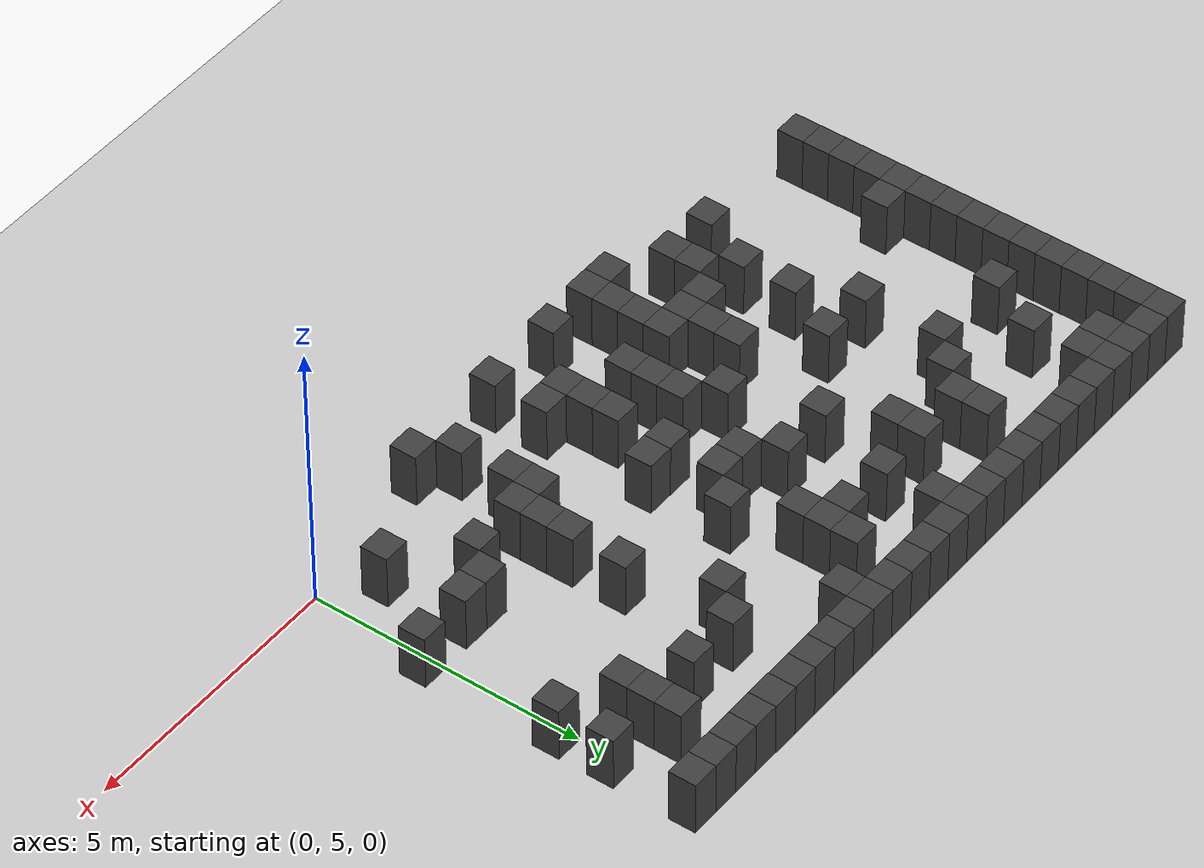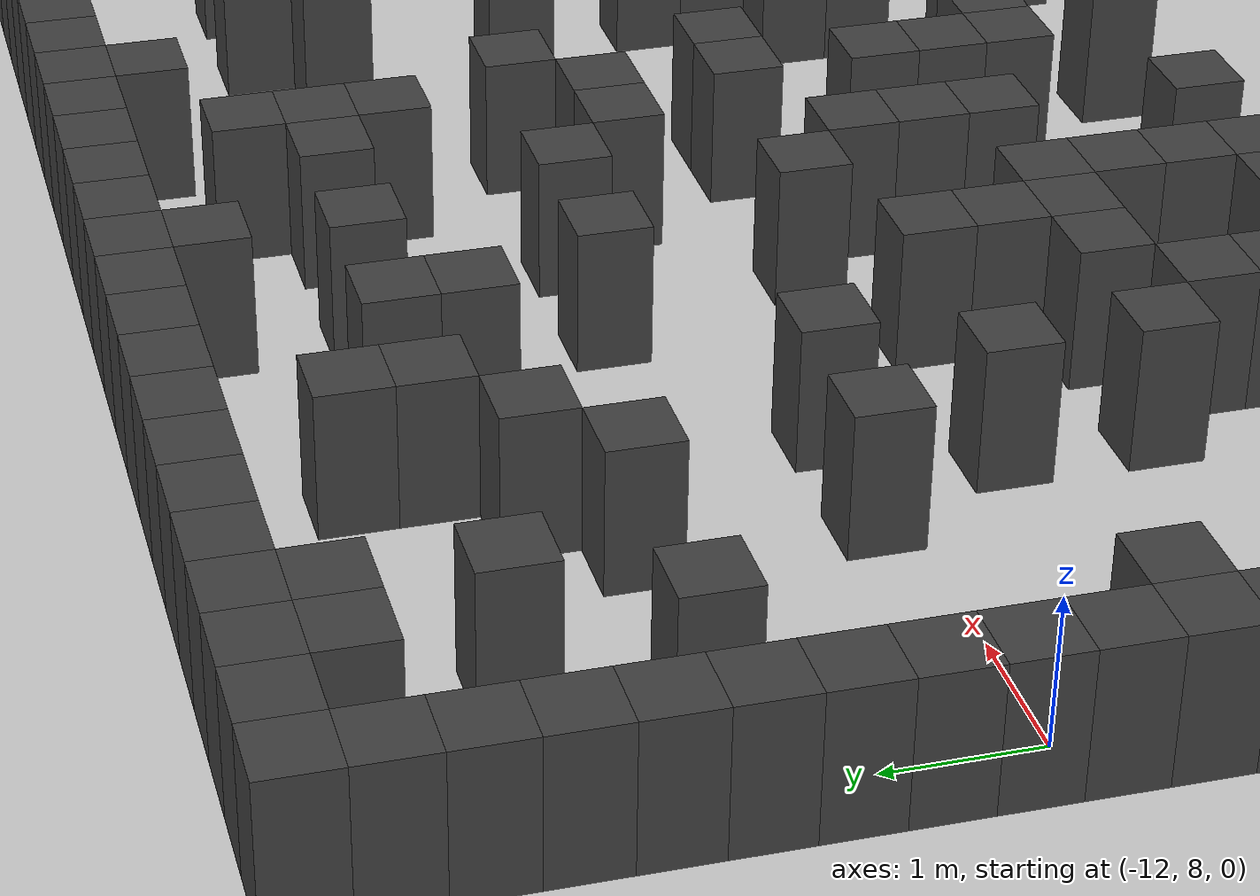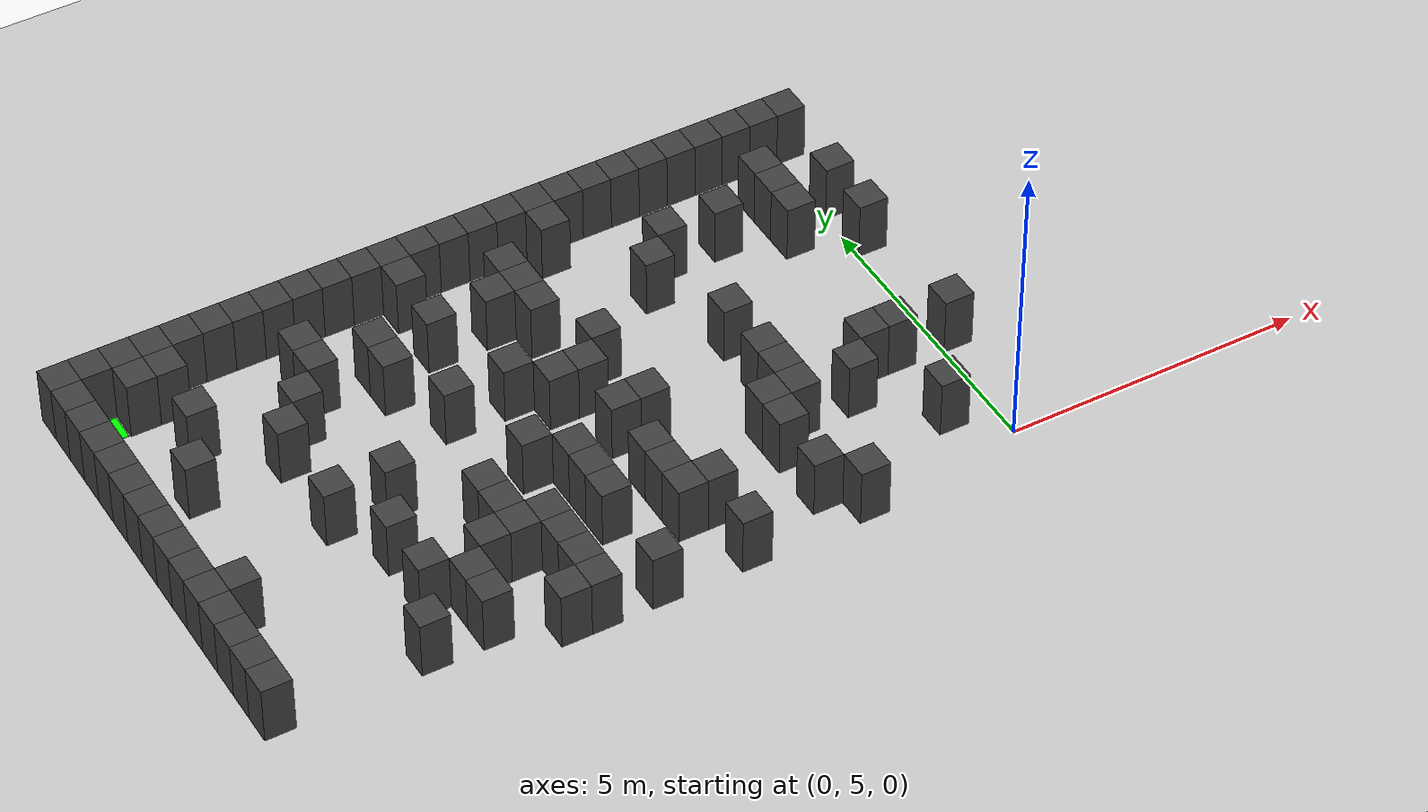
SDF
<sdf version="1.7">
 <world name="map_4302">
  <model name="ground_plane">
   <static>true</static>
   <link name="link">
    <collision name="collision">
     <geometry><plane><normal>0 0 1</normal><size>200 200</size></plane></geometry>
    </collision>
    <visual name="visual">
     <geometry><plane><normal>0 0 1</normal><size>200 200</size></plane></geometry>
     <material><ambient>0.8 0.8 0.8 1</ambient><diffuse>0.8 0.8 0.8 1</diffuse></material>
    </visual>
   </link>
  </model>
  <model name="maze_environment">
   <static>true</static>
   <link name="wall_0">
    <pose>-12.250 12.250 0.500 0 0 0</pose>
    <collision name="col"><geometry><box><size>0.5 0.5 1.0</size></box></geometry></collision>
    <visual name="vis">
     <geometry><box><size>0.5 0.5 1.0</size></box></geometry>
     <material><ambient>0.15 0.15 0.15 1</ambient><diffuse>0.25 0.25 0.25 1</diffuse></material>
    </visual>
   </link>
   <link name="wall_1">
    <pose>-11.750 12.250 0.500 0 0 0</pose>
    <collision name="col"><geometry><box><size>0.5 0.5 1.0</size></box></geometry></collision>
    <visual name="vis">
     <geometry><box><size>0.5 0.5 1.0</size></box></geometry>
     <material><ambient>0.15 0.15 0.15 1</ambient><diffuse>0.25 0.25 0.25 1</diffuse></material>
    </visual>
   </link>
   <link name="wall_2">
    <pose>-11.250 12.250 0.500 0 0 0</pose>
    <collision name="col"><geometry><box><size>0.5 0.5 1.0</size></box></geometry></collision>
    <visual name="vis">
     <geometry><box><size>0.5 0.5 1.0</size></box></geometry>
     <material><ambient>0.15 0.15 0.15 1</ambient><diffuse>0.25 0.25 0.25 1</diffuse></material>
    </visual>
   </link>
   <link name="wall_3">
    <pose>-10.750 12.250 0.500 0 0 0</pose>
    <collision name="col"><geometry><box><size>0.5 0.5 1.0</size></box></geometry></collision>
    <visual name="vis">
     <geometry><box><size>0.5 0.5 1.0</size></box></geometry>
     <material><ambient>0.15 0.15 0.15 1</ambient><diffuse>0.25 0.25 0.25 1</diffuse></material>
    </visual>
   </link>
   <link name="wall_4">
    <pose>-10.250 12.250 0.500 0 0 0</pose>
    <collision name="col"><geometry><box><size>0.5 0.5 1.0</size></box></geometry></collision>
    <visual name="vis">
     <geometry><box><size>0.5 0.5 1.0</size></box></geometry>
     <material><ambient>0.15 0.15 0.15 1</ambient><diffuse>0.25 0.25 0.25 1</diffuse></material>
    </visual>
   </link>
   <link name="wall_5">
    <pose>-9.750 12.250 0.500 0 0 0</pose>
    <collision name="col"><geometry><box><size>0.5 0.5 1.0</size></box></geometry></collision>
    <visual name="vis">
     <geometry><box><size>0.5 0.5 1.0</size></box></geometry>
     <material><ambient>0.15 0.15 0.15 1</ambient><diffuse>0.25 0.25 0.25 1</diffuse></material>
    </visual>
   </link>
   <link name="wall_6">
    <pose>-9.250 12.250 0.500 0 0 0</pose>
    <collision name="col"><geometry><box><size>0.5 0.5 1.0</size></box></geometry></collision>
    <visual name="vis">
     <geometry><box><size>0.5 0.5 1.0</size></box></geometry>
     <material><ambient>0.15 0.15 0.15 1</ambient><diffuse>0.25 0.25 0.25 1</diffuse></material>
    </visual>
   </link>
   <link name="wall_7">
    <pose>-8.750 12.250 0.500 0 0 0</pose>
    <collision name="col"><geometry><box><size>0.5 0.5 1.0</size></box></geometry></collision>
    <visual name="vis">
     <geometry><box><size>0.5 0.5 1.0</size></box></geometry>
     <material><ambient>0.15 0.15 0.15 1</ambient><diffuse>0.25 0.25 0.25 1</diffuse></material>
    </visual>
   </link>
   <link name="wall_8">
    <pose>-8.250 12.250 0.500 0 0 0</pose>
    <collision name="col"><geometry><box><size>0.5 0.5 1.0</size></box></geometry></collision>
    <visual name="vis">
     <geometry><box><size>0.5 0.5 1.0</size></box></geometry>
     <material><ambient>0.15 0.15 0.15 1</ambient><diffuse>0.25 0.25 0.25 1</diffuse></material>
    </visual>
   </link>
   <link name="wall_9">
    <pose>-7.750 12.250 0.500 0 0 0</pose>
    <collision name="col"><geometry><box><size>0.5 0.5 1.0</size></box></geometry></collision>
    <visual name="vis">
     <geometry><box><size>0.5 0.5 1.0</size></box></geometry>
     <material><ambient>0.15 0.15 0.15 1</ambient><diffuse>0.25 0.25 0.25 1</diffuse></material>
    </visual>
   </link>
   <link name="wall_10">
    <pose>-7.250 12.250 0.500 0 0 0</pose>
    <collision name="col"><geometry><box><size>0.5 0.5 1.0</size></box></geometry></collision>
    <visual name="vis">
     <geometry><box><size>0.5 0.5 1.0</size></box></geometry>
     <material><ambient>0.15 0.15 0.15 1</ambient><diffuse>0.25 0.25 0.25 1</diffuse></material>
    </visual>
   </link>
   <link name="wall_11">
    <pose>-6.750 12.250 0.500 0 0 0</pose>
    <collision name="col"><geometry><box><size>0.5 0.5 1.0</size></box></geometry></collision>
    <visual name="vis">
     <geometry><box><size>0.5 0.5 1.0</size></box></geometry>
     <material><ambient>0.15 0.15 0.15 1</ambient><diffuse>0.25 0.25 0.25 1</diffuse></material>
    </visual>
   </link>
   <link name="wall_12">
    <pose>-6.250 12.250 0.500 0 0 0</pose>
    <collision name="col"><geometry><box><size>0.5 0.5 1.0</size></box></geometry></collision>
    <visual name="vis">
     <geometry><box><size>0.5 0.5 1.0</size></box></geometry>
     <material><ambient>0.15 0.15 0.15 1</ambient><diffuse>0.25 0.25 0.25 1</diffuse></material>
    </visual>
   </link>
   <link name="wall_13">
    <pose>-5.750 12.250 0.500 0 0 0</pose>
    <collision name="col"><geometry><box><size>0.5 0.5 1.0</size></box></geometry></collision>
    <visual name="vis">
     <geometry><box><size>0.5 0.5 1.0</size></box></geometry>
     <material><ambient>0.15 0.15 0.15 1</ambient><diffuse>0.25 0.25 0.25 1</diffuse></material>
    </visual>
   </link>
   <link name="wall_14">
    <pose>-5.250 12.250 0.500 0 0 0</pose>
    <collision name="col"><geometry><box><size>0.5 0.5 1.0</size></box></geometry></collision>
    <visual name="vis">
     <geometry><box><size>0.5 0.5 1.0</size></box></geometry>
     <material><ambient>0.15 0.15 0.15 1</ambient><diffuse>0.25 0.25 0.25 1</diffuse></material>
    </visual>
   </link>
   <link name="wall_15">
    <pose>-4.750 12.250 0.500 0 0 0</pose>
    <collision name="col"><geometry><box><size>0.5 0.5 1.0</size></box></geometry></collision>
    <visual name="vis">
     <geometry><box><size>0.5 0.5 1.0</size></box></geometry>
     <material><ambient>0.15 0.15 0.15 1</ambient><diffuse>0.25 0.25 0.25 1</diffuse></material>
    </visual>
   </link>
   <link name="wall_16">
    <pose>-4.250 12.250 0.500 0 0 0</pose>
    <collision name="col"><geometry><box><size>0.5 0.5 1.0</size></box></geometry></collision>
    <visual name="vis">
     <geometry><box><size>0.5 0.5 1.0</size></box></geometry>
     <material><ambient>0.15 0.15 0.15 1</ambient><diffuse>0.25 0.25 0.25 1</diffuse></material>
    </visual>
   </link>
   <link name="wall_17">
    <pose>-3.750 12.250 0.500 0 0 0</pose>
    <collision name="col"><geometry><box><size>0.5 0.5 1.0</size></box></geometry></collision>
    <visual name="vis">
     <geometry><box><size>0.5 0.5 1.0</size></box></geometry>
     <material><ambient>0.15 0.15 0.15 1</ambient><diffuse>0.25 0.25 0.25 1</diffuse></material>
    </visual>
   </link>
   <link name="wall_18">
    <pose>-3.250 12.250 0.500 0 0 0</pose>
    <collision name="col"><geometry><box><size>0.5 0.5 1.0</size></box></geometry></collision>
    <visual name="vis">
     <geometry><box><size>0.5 0.5 1.0</size></box></geometry>
     <material><ambient>0.15 0.15 0.15 1</ambient><diffuse>0.25 0.25 0.25 1</diffuse></material>
    </visual>
   </link>
   <link name="wall_19">
    <pose>-2.750 12.250 0.500 0 0 0</pose>
    <collision name="col"><geometry><box><size>0.5 0.5 1.0</size></box></geometry></collision>
    <visual name="vis">
     <geometry><box><size>0.5 0.5 1.0</size></box></geometry>
     <material><ambient>0.15 0.15 0.15 1</ambient><diffuse>0.25 0.25 0.25 1</diffuse></material>
    </visual>
   </link>
   <link name="wall_20">
    <pose>-2.250 12.250 0.500 0 0 0</pose>
    <collision name="col"><geometry><box><size>0.5 0.5 1.0</size></box></geometry></collision>
    <visual name="vis">
     <geometry><box><size>0.5 0.5 1.0</size></box></geometry>
     <material><ambient>0.15 0.15 0.15 1</ambient><diffuse>0.25 0.25 0.25 1</diffuse></material>
    </visual>
   </link>
   <link name="wall_21">
    <pose>-1.750 12.250 0.500 0 0 0</pose>
    <collision name="col"><geometry><box><size>0.5 0.5 1.0</size></box></geometry></collision>
    <visual name="vis">
     <geometry><box><size>0.5 0.5 1.0</size></box></geometry>
     <material><ambient>0.15 0.15 0.15 1</ambient><diffuse>0.25 0.25 0.25 1</diffuse></material>
    </visual>
   </link>
   <link name="wall_22">
    <pose>-1.250 12.250 0.500 0 0 0</pose>
    <collision name="col"><geometry><box><size>0.5 0.5 1.0</size></box></geometry></collision>
    <visual name="vis">
     <geometry><box><size>0.5 0.5 1.0</size></box></geometry>
     <material><ambient>0.15 0.15 0.15 1</ambient><diffuse>0.25 0.25 0.25 1</diffuse></material>
    </visual>
   </link>
   <link name="wall_23">
    <pose>-0.750 12.250 0.500 0 0 0</pose>
    <collision name="col"><geometry><box><size>0.5 0.5 1.0</size></box></geometry></collision>
    <visual name="vis">
     <geometry><box><size>0.5 0.5 1.0</size></box></geometry>
     <material><ambient>0.15 0.15 0.15 1</ambient><diffuse>0.25 0.25 0.25 1</diffuse></material>
    </visual>
   </link>
   <link name="wall_24">
    <pose>-0.250 12.250 0.500 0 0 0</pose>
    <collision name="col"><geometry><box><size>0.5 0.5 1.0</size></box></geometry></collision>
    <visual name="vis">
     <geometry><box><size>0.5 0.5 1.0</size></box></geometry>
     <material><ambient>0.15 0.15 0.15 1</ambient><diffuse>0.25 0.25 0.25 1</diffuse></material>
    </visual>
   </link>
   <link name="wall_25">
    <pose>0.250 12.250 0.500 0 0 0</pose>
    <collision name="col"><geometry><box><size>0.5 0.5 1.0</size></box></geometry></collision>
    <visual name="vis">
     <geometry><box><size>0.5 0.5 1.0</size></box></geometry>
     <material><ambient>0.15 0.15 0.15 1</ambient><diffuse>0.25 0.25 0.25 1</diffuse></material>
    </visual>
   </link>
   <link name="wall_50">
    <pose>-12.250 11.750 0.500 0 0 0</pose>
    <collision name="col"><geometry><box><size>0.5 0.5 1.0</size></box></geometry></collision>
    <visual name="vis">
     <geometry><box><size>0.5 0.5 1.0</size></box></geometry>
     <material><ambient>0.15 0.15 0.15 1</ambient><diffuse>0.25 0.25 0.25 1</diffuse></material>
    </visual>
   </link>
   <link name="wall_51">
    <pose>-11.250 11.750 0.500 0 0 0</pose>
    <collision name="col"><geometry><box><size>0.5 0.5 1.0</size></box></geometry></collision>
    <visual name="vis">
     <geometry><box><size>0.5 0.5 1.0</size></box></geometry>
     <material><ambient>0.15 0.15 0.15 1</ambient><diffuse>0.25 0.25 0.25 1</diffuse></material>
    </visual>
   </link>
   <link name="wall_52">
    <pose>-10.750 11.750 0.500 0 0 0</pose>
    <collision name="col"><geometry><box><size>0.5 0.5 1.0</size></box></geometry></collision>
    <visual name="vis">
     <geometry><box><size>0.5 0.5 1.0</size></box></geometry>
     <material><ambient>0.15 0.15 0.15 1</ambient><diffuse>0.25 0.25 0.25 1</diffuse></material>
    </visual>
   </link>
   <link name="wall_53">
    <pose>-6.750 11.750 0.500 0 0 0</pose>
    <collision name="col"><geometry><box><size>0.5 0.5 1.0</size></box></geometry></collision>
    <visual name="vis">
     <geometry><box><size>0.5 0.5 1.0</size></box></geometry>
     <material><ambient>0.15 0.15 0.15 1</ambient><diffuse>0.25 0.25 0.25 1</diffuse></material>
    </visual>
   </link>
   <link name="wall_54">
    <pose>-4.250 11.750 0.500 0 0 0</pose>
    <collision name="col"><geometry><box><size>0.5 0.5 1.0</size></box></geometry></collision>
    <visual name="vis">
     <geometry><box><size>0.5 0.5 1.0</size></box></geometry>
     <material><ambient>0.15 0.15 0.15 1</ambient><diffuse>0.25 0.25 0.25 1</diffuse></material>
    </visual>
   </link>
   <link name="wall_62">
    <pose>-12.250 11.250 0.500 0 0 0</pose>
    <collision name="col"><geometry><box><size>0.5 0.5 1.0</size></box></geometry></collision>
    <visual name="vis">
     <geometry><box><size>0.5 0.5 1.0</size></box></geometry>
     <material><ambient>0.15 0.15 0.15 1</ambient><diffuse>0.25 0.25 0.25 1</diffuse></material>
    </visual>
   </link>
   <link name="wall_63">
    <pose>-8.750 11.250 0.500 0 0 0</pose>
    <collision name="col"><geometry><box><size>0.5 0.5 1.0</size></box></geometry></collision>
    <visual name="vis">
     <geometry><box><size>0.5 0.5 1.0</size></box></geometry>
     <material><ambient>0.15 0.15 0.15 1</ambient><diffuse>0.25 0.25 0.25 1</diffuse></material>
    </visual>
   </link>
   <link name="wall_64">
    <pose>-5.250 11.250 0.500 0 0 0</pose>
    <collision name="col"><geometry><box><size>0.5 0.5 1.0</size></box></geometry></collision>
    <visual name="vis">
     <geometry><box><size>0.5 0.5 1.0</size></box></geometry>
     <material><ambient>0.15 0.15 0.15 1</ambient><diffuse>0.25 0.25 0.25 1</diffuse></material>
    </visual>
   </link>
   <link name="wall_65">
    <pose>-0.750 11.250 0.500 0 0 0</pose>
    <collision name="col"><geometry><box><size>0.5 0.5 1.0</size></box></geometry></collision>
    <visual name="vis">
     <geometry><box><size>0.5 0.5 1.0</size></box></geometry>
     <material><ambient>0.15 0.15 0.15 1</ambient><diffuse>0.25 0.25 0.25 1</diffuse></material>
    </visual>
   </link>
   <link name="wall_69">
    <pose>-12.250 10.750 0.500 0 0 0</pose>
    <collision name="col"><geometry><box><size>0.5 0.5 1.0</size></box></geometry></collision>
    <visual name="vis">
     <geometry><box><size>0.5 0.5 1.0</size></box></geometry>
     <material><ambient>0.15 0.15 0.15 1</ambient><diffuse>0.25 0.25 0.25 1</diffuse></material>
    </visual>
   </link>
   <link name="wall_70">
    <pose>-10.750 10.750 0.500 0 0 0</pose>
    <collision name="col"><geometry><box><size>0.5 0.5 1.0</size></box></geometry></collision>
    <visual name="vis">
     <geometry><box><size>0.5 0.5 1.0</size></box></geometry>
     <material><ambient>0.15 0.15 0.15 1</ambient><diffuse>0.25 0.25 0.25 1</diffuse></material>
    </visual>
   </link>
   <link name="wall_71">
    <pose>-8.750 10.750 0.500 0 0 0</pose>
    <collision name="col"><geometry><box><size>0.5 0.5 1.0</size></box></geometry></collision>
    <visual name="vis">
     <geometry><box><size>0.5 0.5 1.0</size></box></geometry>
     <material><ambient>0.15 0.15 0.15 1</ambient><diffuse>0.25 0.25 0.25 1</diffuse></material>
    </visual>
   </link>
   <link name="wall_72">
    <pose>-7.750 10.750 0.500 0 0 0</pose>
    <collision name="col"><geometry><box><size>0.5 0.5 1.0</size></box></geometry></collision>
    <visual name="vis">
     <geometry><box><size>0.5 0.5 1.0</size></box></geometry>
     <material><ambient>0.15 0.15 0.15 1</ambient><diffuse>0.25 0.25 0.25 1</diffuse></material>
    </visual>
   </link>
   <link name="wall_73">
    <pose>-6.750 10.750 0.500 0 0 0</pose>
    <collision name="col"><geometry><box><size>0.5 0.5 1.0</size></box></geometry></collision>
    <visual name="vis">
     <geometry><box><size>0.5 0.5 1.0</size></box></geometry>
     <material><ambient>0.15 0.15 0.15 1</ambient><diffuse>0.25 0.25 0.25 1</diffuse></material>
    </visual>
   </link>
   <link name="wall_74">
    <pose>-5.750 10.750 0.500 0 0 0</pose>
    <collision name="col"><geometry><box><size>0.5 0.5 1.0</size></box></geometry></collision>
    <visual name="vis">
     <geometry><box><size>0.5 0.5 1.0</size></box></geometry>
     <material><ambient>0.15 0.15 0.15 1</ambient><diffuse>0.25 0.25 0.25 1</diffuse></material>
    </visual>
   </link>
   <link name="wall_75">
    <pose>-5.250 10.750 0.500 0 0 0</pose>
    <collision name="col"><geometry><box><size>0.5 0.5 1.0</size></box></geometry></collision>
    <visual name="vis">
     <geometry><box><size>0.5 0.5 1.0</size></box></geometry>
     <material><ambient>0.15 0.15 0.15 1</ambient><diffuse>0.25 0.25 0.25 1</diffuse></material>
    </visual>
   </link>
   <link name="wall_76">
    <pose>-2.750 10.750 0.500 0 0 0</pose>
    <collision name="col"><geometry><box><size>0.5 0.5 1.0</size></box></geometry></collision>
    <visual name="vis">
     <geometry><box><size>0.5 0.5 1.0</size></box></geometry>
     <material><ambient>0.15 0.15 0.15 1</ambient><diffuse>0.25 0.25 0.25 1</diffuse></material>
    </visual>
   </link>
   <link name="wall_77">
    <pose>-1.750 10.750 0.500 0 0 0</pose>
    <collision name="col"><geometry><box><size>0.5 0.5 1.0</size></box></geometry></collision>
    <visual name="vis">
     <geometry><box><size>0.5 0.5 1.0</size></box></geometry>
     <material><ambient>0.15 0.15 0.15 1</ambient><diffuse>0.25 0.25 0.25 1</diffuse></material>
    </visual>
   </link>
   <link name="wall_78">
    <pose>-0.750 10.750 0.500 0 0 0</pose>
    <collision name="col"><geometry><box><size>0.5 0.5 1.0</size></box></geometry></collision>
    <visual name="vis">
     <geometry><box><size>0.5 0.5 1.0</size></box></geometry>
     <material><ambient>0.15 0.15 0.15 1</ambient><diffuse>0.25 0.25 0.25 1</diffuse></material>
    </visual>
   </link>
   <link name="wall_79">
    <pose>0.250 10.750 0.500 0 0 0</pose>
    <collision name="col"><geometry><box><size>0.5 0.5 1.0</size></box></geometry></collision>
    <visual name="vis">
     <geometry><box><size>0.5 0.5 1.0</size></box></geometry>
     <material><ambient>0.15 0.15 0.15 1</ambient><diffuse>0.25 0.25 0.25 1</diffuse></material>
    </visual>
   </link>
   <link name="wall_87">
    <pose>-12.250 10.250 0.500 0 0 0</pose>
    <collision name="col"><geometry><box><size>0.5 0.5 1.0</size></box></geometry></collision>
    <visual name="vis">
     <geometry><box><size>0.5 0.5 1.0</size></box></geometry>
     <material><ambient>0.15 0.15 0.15 1</ambient><diffuse>0.25 0.25 0.25 1</diffuse></material>
    </visual>
   </link>
   <link name="wall_88">
    <pose>-9.250 10.250 0.500 0 0 0</pose>
    <collision name="col"><geometry><box><size>0.5 0.5 1.0</size></box></geometry></collision>
    <visual name="vis">
     <geometry><box><size>0.5 0.5 1.0</size></box></geometry>
     <material><ambient>0.15 0.15 0.15 1</ambient><diffuse>0.25 0.25 0.25 1</diffuse></material>
    </visual>
   </link>
   <link name="wall_89">
    <pose>-7.750 10.250 0.500 0 0 0</pose>
    <collision name="col"><geometry><box><size>0.5 0.5 1.0</size></box></geometry></collision>
    <visual name="vis">
     <geometry><box><size>0.5 0.5 1.0</size></box></geometry>
     <material><ambient>0.15 0.15 0.15 1</ambient><diffuse>0.25 0.25 0.25 1</diffuse></material>
    </visual>
   </link>
   <link name="wall_90">
    <pose>-5.250 10.250 0.500 0 0 0</pose>
    <collision name="col"><geometry><box><size>0.5 0.5 1.0</size></box></geometry></collision>
    <visual name="vis">
     <geometry><box><size>0.5 0.5 1.0</size></box></geometry>
     <material><ambient>0.15 0.15 0.15 1</ambient><diffuse>0.25 0.25 0.25 1</diffuse></material>
    </visual>
   </link>
   <link name="wall_91">
    <pose>-3.250 10.250 0.500 0 0 0</pose>
    <collision name="col"><geometry><box><size>0.5 0.5 1.0</size></box></geometry></collision>
    <visual name="vis">
     <geometry><box><size>0.5 0.5 1.0</size></box></geometry>
     <material><ambient>0.15 0.15 0.15 1</ambient><diffuse>0.25 0.25 0.25 1</diffuse></material>
    </visual>
   </link>
   <link name="wall_92">
    <pose>-0.750 10.250 0.500 0 0 0</pose>
    <collision name="col"><geometry><box><size>0.5 0.5 1.0</size></box></geometry></collision>
    <visual name="vis">
     <geometry><box><size>0.5 0.5 1.0</size></box></geometry>
     <material><ambient>0.15 0.15 0.15 1</ambient><diffuse>0.25 0.25 0.25 1</diffuse></material>
    </visual>
   </link>
   <link name="wall_99">
    <pose>-12.250 9.750 0.500 0 0 0</pose>
    <collision name="col"><geometry><box><size>0.5 0.5 1.0</size></box></geometry></collision>
    <visual name="vis">
     <geometry><box><size>0.5 0.5 1.0</size></box></geometry>
     <material><ambient>0.15 0.15 0.15 1</ambient><diffuse>0.25 0.25 0.25 1</diffuse></material>
    </visual>
   </link>
   <link name="wall_100">
    <pose>-11.250 9.750 0.500 0 0 0</pose>
    <collision name="col"><geometry><box><size>0.5 0.5 1.0</size></box></geometry></collision>
    <visual name="vis">
     <geometry><box><size>0.5 0.5 1.0</size></box></geometry>
     <material><ambient>0.15 0.15 0.15 1</ambient><diffuse>0.25 0.25 0.25 1</diffuse></material>
    </visual>
   </link>
   <link name="wall_101">
    <pose>-9.750 9.750 0.500 0 0 0</pose>
    <collision name="col"><geometry><box><size>0.5 0.5 1.0</size></box></geometry></collision>
    <visual name="vis">
     <geometry><box><size>0.5 0.5 1.0</size></box></geometry>
     <material><ambient>0.15 0.15 0.15 1</ambient><diffuse>0.25 0.25 0.25 1</diffuse></material>
    </visual>
   </link>
   <link name="wall_102">
    <pose>0.250 9.750 0.500 0 0 0</pose>
    <collision name="col"><geometry><box><size>0.5 0.5 1.0</size></box></geometry></collision>
    <visual name="vis">
     <geometry><box><size>0.5 0.5 1.0</size></box></geometry>
     <material><ambient>0.15 0.15 0.15 1</ambient><diffuse>0.25 0.25 0.25 1</diffuse></material>
    </visual>
   </link>
   <link name="wall_108">
    <pose>-12.250 9.250 0.500 0 0 0</pose>
    <collision name="col"><geometry><box><size>0.5 0.5 1.0</size></box></geometry></collision>
    <visual name="vis">
     <geometry><box><size>0.5 0.5 1.0</size></box></geometry>
     <material><ambient>0.15 0.15 0.15 1</ambient><diffuse>0.25 0.25 0.25 1</diffuse></material>
    </visual>
   </link>
   <link name="wall_109">
    <pose>-7.250 9.250 0.500 0 0 0</pose>
    <collision name="col"><geometry><box><size>0.5 0.5 1.0</size></box></geometry></collision>
    <visual name="vis">
     <geometry><box><size>0.5 0.5 1.0</size></box></geometry>
     <material><ambient>0.15 0.15 0.15 1</ambient><diffuse>0.25 0.25 0.25 1</diffuse></material>
    </visual>
   </link>
   <link name="wall_110">
    <pose>-6.250 9.250 0.500 0 0 0</pose>
    <collision name="col"><geometry><box><size>0.5 0.5 1.0</size></box></geometry></collision>
    <visual name="vis">
     <geometry><box><size>0.5 0.5 1.0</size></box></geometry>
     <material><ambient>0.15 0.15 0.15 1</ambient><diffuse>0.25 0.25 0.25 1</diffuse></material>
    </visual>
   </link>
   <link name="wall_111">
    <pose>-4.750 9.250 0.500 0 0 0</pose>
    <collision name="col"><geometry><box><size>0.5 0.5 1.0</size></box></geometry></collision>
    <visual name="vis">
     <geometry><box><size>0.5 0.5 1.0</size></box></geometry>
     <material><ambient>0.15 0.15 0.15 1</ambient><diffuse>0.25 0.25 0.25 1</diffuse></material>
    </visual>
   </link>
   <link name="wall_119">
    <pose>-12.250 8.750 0.500 0 0 0</pose>
    <collision name="col"><geometry><box><size>0.5 0.5 1.0</size></box></geometry></collision>
    <visual name="vis">
     <geometry><box><size>0.5 0.5 1.0</size></box></geometry>
     <material><ambient>0.15 0.15 0.15 1</ambient><diffuse>0.25 0.25 0.25 1</diffuse></material>
    </visual>
   </link>
   <link name="wall_120">
    <pose>-5.750 8.750 0.500 0 0 0</pose>
    <collision name="col"><geometry><box><size>0.5 0.5 1.0</size></box></geometry></collision>
    <visual name="vis">
     <geometry><box><size>0.5 0.5 1.0</size></box></geometry>
     <material><ambient>0.15 0.15 0.15 1</ambient><diffuse>0.25 0.25 0.25 1</diffuse></material>
    </visual>
   </link>
   <link name="wall_121">
    <pose>-5.250 8.750 0.500 0 0 0</pose>
    <collision name="col"><geometry><box><size>0.5 0.5 1.0</size></box></geometry></collision>
    <visual name="vis">
     <geometry><box><size>0.5 0.5 1.0</size></box></geometry>
     <material><ambient>0.15 0.15 0.15 1</ambient><diffuse>0.25 0.25 0.25 1</diffuse></material>
    </visual>
   </link>
   <link name="wall_122">
    <pose>-2.750 8.750 0.500 0 0 0</pose>
    <collision name="col"><geometry><box><size>0.5 0.5 1.0</size></box></geometry></collision>
    <visual name="vis">
     <geometry><box><size>0.5 0.5 1.0</size></box></geometry>
     <material><ambient>0.15 0.15 0.15 1</ambient><diffuse>0.25 0.25 0.25 1</diffuse></material>
    </visual>
   </link>
   <link name="wall_128">
    <pose>-12.250 8.250 0.500 0 0 0</pose>
    <collision name="col"><geometry><box><size>0.5 0.5 1.0</size></box></geometry></collision>
    <visual name="vis">
     <geometry><box><size>0.5 0.5 1.0</size></box></geometry>
     <material><ambient>0.15 0.15 0.15 1</ambient><diffuse>0.25 0.25 0.25 1</diffuse></material>
    </visual>
   </link>
   <link name="wall_129">
    <pose>-9.750 8.250 0.500 0 0 0</pose>
    <collision name="col"><geometry><box><size>0.5 0.5 1.0</size></box></geometry></collision>
    <visual name="vis">
     <geometry><box><size>0.5 0.5 1.0</size></box></geometry>
     <material><ambient>0.15 0.15 0.15 1</ambient><diffuse>0.25 0.25 0.25 1</diffuse></material>
    </visual>
   </link>
   <link name="wall_130">
    <pose>-8.750 8.250 0.500 0 0 0</pose>
    <collision name="col"><geometry><box><size>0.5 0.5 1.0</size></box></geometry></collision>
    <visual name="vis">
     <geometry><box><size>0.5 0.5 1.0</size></box></geometry>
     <material><ambient>0.15 0.15 0.15 1</ambient><diffuse>0.25 0.25 0.25 1</diffuse></material>
    </visual>
   </link>
   <link name="wall_138">
    <pose>-12.250 7.750 0.500 0 0 0</pose>
    <collision name="col"><geometry><box><size>0.5 0.5 1.0</size></box></geometry></collision>
    <visual name="vis">
     <geometry><box><size>0.5 0.5 1.0</size></box></geometry>
     <material><ambient>0.15 0.15 0.15 1</ambient><diffuse>0.25 0.25 0.25 1</diffuse></material>
    </visual>
   </link>
   <link name="wall_139">
    <pose>-6.750 7.750 0.500 0 0 0</pose>
    <collision name="col"><geometry><box><size>0.5 0.5 1.0</size></box></geometry></collision>
    <visual name="vis">
     <geometry><box><size>0.5 0.5 1.0</size></box></geometry>
     <material><ambient>0.15 0.15 0.15 1</ambient><diffuse>0.25 0.25 0.25 1</diffuse></material>
    </visual>
   </link>
   <link name="wall_140">
    <pose>-5.250 7.750 0.500 0 0 0</pose>
    <collision name="col"><geometry><box><size>0.5 0.5 1.0</size></box></geometry></collision>
    <visual name="vis">
     <geometry><box><size>0.5 0.5 1.0</size></box></geometry>
     <material><ambient>0.15 0.15 0.15 1</ambient><diffuse>0.25 0.25 0.25 1</diffuse></material>
    </visual>
   </link>
   <link name="wall_141">
    <pose>-4.750 7.750 0.500 0 0 0</pose>
    <collision name="col"><geometry><box><size>0.5 0.5 1.0</size></box></geometry></collision>
    <visual name="vis">
     <geometry><box><size>0.5 0.5 1.0</size></box></geometry>
     <material><ambient>0.15 0.15 0.15 1</ambient><diffuse>0.25 0.25 0.25 1</diffuse></material>
    </visual>
   </link>
   <link name="wall_142">
    <pose>-2.750 7.750 0.500 0 0 0</pose>
    <collision name="col"><geometry><box><size>0.5 0.5 1.0</size></box></geometry></collision>
    <visual name="vis">
     <geometry><box><size>0.5 0.5 1.0</size></box></geometry>
     <material><ambient>0.15 0.15 0.15 1</ambient><diffuse>0.25 0.25 0.25 1</diffuse></material>
    </visual>
   </link>
   <link name="wall_147">
    <pose>-12.250 7.250 0.500 0 0 0</pose>
    <collision name="col"><geometry><box><size>0.5 0.5 1.0</size></box></geometry></collision>
    <visual name="vis">
     <geometry><box><size>0.5 0.5 1.0</size></box></geometry>
     <material><ambient>0.15 0.15 0.15 1</ambient><diffuse>0.25 0.25 0.25 1</diffuse></material>
    </visual>
   </link>
   <link name="wall_148">
    <pose>-11.750 7.250 0.500 0 0 0</pose>
    <collision name="col"><geometry><box><size>0.5 0.5 1.0</size></box></geometry></collision>
    <visual name="vis">
     <geometry><box><size>0.5 0.5 1.0</size></box></geometry>
     <material><ambient>0.15 0.15 0.15 1</ambient><diffuse>0.25 0.25 0.25 1</diffuse></material>
    </visual>
   </link>
   <link name="wall_149">
    <pose>-9.250 7.250 0.500 0 0 0</pose>
    <collision name="col"><geometry><box><size>0.5 0.5 1.0</size></box></geometry></collision>
    <visual name="vis">
     <geometry><box><size>0.5 0.5 1.0</size></box></geometry>
     <material><ambient>0.15 0.15 0.15 1</ambient><diffuse>0.25 0.25 0.25 1</diffuse></material>
    </visual>
   </link>
   <link name="wall_150">
    <pose>-7.750 7.250 0.500 0 0 0</pose>
    <collision name="col"><geometry><box><size>0.5 0.5 1.0</size></box></geometry></collision>
    <visual name="vis">
     <geometry><box><size>0.5 0.5 1.0</size></box></geometry>
     <material><ambient>0.15 0.15 0.15 1</ambient><diffuse>0.25 0.25 0.25 1</diffuse></material>
    </visual>
   </link>
   <link name="wall_151">
    <pose>-6.250 7.250 0.500 0 0 0</pose>
    <collision name="col"><geometry><box><size>0.5 0.5 1.0</size></box></geometry></collision>
    <visual name="vis">
     <geometry><box><size>0.5 0.5 1.0</size></box></geometry>
     <material><ambient>0.15 0.15 0.15 1</ambient><diffuse>0.25 0.25 0.25 1</diffuse></material>
    </visual>
   </link>
   <link name="wall_152">
    <pose>-2.750 7.250 0.500 0 0 0</pose>
    <collision name="col"><geometry><box><size>0.5 0.5 1.0</size></box></geometry></collision>
    <visual name="vis">
     <geometry><box><size>0.5 0.5 1.0</size></box></geometry>
     <material><ambient>0.15 0.15 0.15 1</ambient><diffuse>0.25 0.25 0.25 1</diffuse></material>
    </visual>
   </link>
   <link name="wall_153">
    <pose>-1.250 7.250 0.500 0 0 0</pose>
    <collision name="col"><geometry><box><size>0.5 0.5 1.0</size></box></geometry></collision>
    <visual name="vis">
     <geometry><box><size>0.5 0.5 1.0</size></box></geometry>
     <material><ambient>0.15 0.15 0.15 1</ambient><diffuse>0.25 0.25 0.25 1</diffuse></material>
    </visual>
   </link>
   <link name="wall_154">
    <pose>-0.750 7.250 0.500 0 0 0</pose>
    <collision name="col"><geometry><box><size>0.5 0.5 1.0</size></box></geometry></collision>
    <visual name="vis">
     <geometry><box><size>0.5 0.5 1.0</size></box></geometry>
     <material><ambient>0.15 0.15 0.15 1</ambient><diffuse>0.25 0.25 0.25 1</diffuse></material>
    </visual>
   </link>
   <link name="wall_155">
    <pose>0.250 7.250 0.500 0 0 0</pose>
    <collision name="col"><geometry><box><size>0.5 0.5 1.0</size></box></geometry></collision>
    <visual name="vis">
     <geometry><box><size>0.5 0.5 1.0</size></box></geometry>
     <material><ambient>0.15 0.15 0.15 1</ambient><diffuse>0.25 0.25 0.25 1</diffuse></material>
    </visual>
   </link>
   <link name="wall_159">
    <pose>-12.250 6.750 0.500 0 0 0</pose>
    <collision name="col"><geometry><box><size>0.5 0.5 1.0</size></box></geometry></collision>
    <visual name="vis">
     <geometry><box><size>0.5 0.5 1.0</size></box></geometry>
     <material><ambient>0.15 0.15 0.15 1</ambient><diffuse>0.25 0.25 0.25 1</diffuse></material>
    </visual>
   </link>
   <link name="wall_160">
    <pose>-7.750 6.750 0.500 0 0 0</pose>
    <collision name="col"><geometry><box><size>0.5 0.5 1.0</size></box></geometry></collision>
    <visual name="vis">
     <geometry><box><size>0.5 0.5 1.0</size></box></geometry>
     <material><ambient>0.15 0.15 0.15 1</ambient><diffuse>0.25 0.25 0.25 1</diffuse></material>
    </visual>
   </link>
   <link name="wall_161">
    <pose>-6.250 6.750 0.500 0 0 0</pose>
    <collision name="col"><geometry><box><size>0.5 0.5 1.0</size></box></geometry></collision>
    <visual name="vis">
     <geometry><box><size>0.5 0.5 1.0</size></box></geometry>
     <material><ambient>0.15 0.15 0.15 1</ambient><diffuse>0.25 0.25 0.25 1</diffuse></material>
    </visual>
   </link>
   <link name="wall_162">
    <pose>-5.250 6.750 0.500 0 0 0</pose>
    <collision name="col"><geometry><box><size>0.5 0.5 1.0</size></box></geometry></collision>
    <visual name="vis">
     <geometry><box><size>0.5 0.5 1.0</size></box></geometry>
     <material><ambient>0.15 0.15 0.15 1</ambient><diffuse>0.25 0.25 0.25 1</diffuse></material>
    </visual>
   </link>
   <link name="wall_163">
    <pose>-3.250 6.750 0.500 0 0 0</pose>
    <collision name="col"><geometry><box><size>0.5 0.5 1.0</size></box></geometry></collision>
    <visual name="vis">
     <geometry><box><size>0.5 0.5 1.0</size></box></geometry>
     <material><ambient>0.15 0.15 0.15 1</ambient><diffuse>0.25 0.25 0.25 1</diffuse></material>
    </visual>
   </link>
   <link name="wall_164">
    <pose>-2.750 6.750 0.500 0 0 0</pose>
    <collision name="col"><geometry><box><size>0.5 0.5 1.0</size></box></geometry></collision>
    <visual name="vis">
     <geometry><box><size>0.5 0.5 1.0</size></box></geometry>
     <material><ambient>0.15 0.15 0.15 1</ambient><diffuse>0.25 0.25 0.25 1</diffuse></material>
    </visual>
   </link>
   <link name="wall_165">
    <pose>-1.750 6.750 0.500 0 0 0</pose>
    <collision name="col"><geometry><box><size>0.5 0.5 1.0</size></box></geometry></collision>
    <visual name="vis">
     <geometry><box><size>0.5 0.5 1.0</size></box></geometry>
     <material><ambient>0.15 0.15 0.15 1</ambient><diffuse>0.25 0.25 0.25 1</diffuse></material>
    </visual>
   </link>
   <link name="wall_171">
    <pose>-12.250 6.250 0.500 0 0 0</pose>
    <collision name="col"><geometry><box><size>0.5 0.5 1.0</size></box></geometry></collision>
    <visual name="vis">
     <geometry><box><size>0.5 0.5 1.0</size></box></geometry>
     <material><ambient>0.15 0.15 0.15 1</ambient><diffuse>0.25 0.25 0.25 1</diffuse></material>
    </visual>
   </link>
   <link name="wall_172">
    <pose>-9.250 6.250 0.500 0 0 0</pose>
    <collision name="col"><geometry><box><size>0.5 0.5 1.0</size></box></geometry></collision>
    <visual name="vis">
     <geometry><box><size>0.5 0.5 1.0</size></box></geometry>
     <material><ambient>0.15 0.15 0.15 1</ambient><diffuse>0.25 0.25 0.25 1</diffuse></material>
    </visual>
   </link>
   <link name="wall_173">
    <pose>-8.250 6.250 0.500 0 0 0</pose>
    <collision name="col"><geometry><box><size>0.5 0.5 1.0</size></box></geometry></collision>
    <visual name="vis">
     <geometry><box><size>0.5 0.5 1.0</size></box></geometry>
     <material><ambient>0.15 0.15 0.15 1</ambient><diffuse>0.25 0.25 0.25 1</diffuse></material>
    </visual>
   </link>
   <link name="wall_174">
    <pose>-7.750 6.250 0.500 0 0 0</pose>
    <collision name="col"><geometry><box><size>0.5 0.5 1.0</size></box></geometry></collision>
    <visual name="vis">
     <geometry><box><size>0.5 0.5 1.0</size></box></geometry>
     <material><ambient>0.15 0.15 0.15 1</ambient><diffuse>0.25 0.25 0.25 1</diffuse></material>
    </visual>
   </link>
   <link name="wall_175">
    <pose>-7.250 6.250 0.500 0 0 0</pose>
    <collision name="col"><geometry><box><size>0.5 0.5 1.0</size></box></geometry></collision>
    <visual name="vis">
     <geometry><box><size>0.5 0.5 1.0</size></box></geometry>
     <material><ambient>0.15 0.15 0.15 1</ambient><diffuse>0.25 0.25 0.25 1</diffuse></material>
    </visual>
   </link>
   <link name="wall_176">
    <pose>-6.250 6.250 0.500 0 0 0</pose>
    <collision name="col"><geometry><box><size>0.5 0.5 1.0</size></box></geometry></collision>
    <visual name="vis">
     <geometry><box><size>0.5 0.5 1.0</size></box></geometry>
     <material><ambient>0.15 0.15 0.15 1</ambient><diffuse>0.25 0.25 0.25 1</diffuse></material>
    </visual>
   </link>
   <link name="wall_177">
    <pose>-5.250 6.250 0.500 0 0 0</pose>
    <collision name="col"><geometry><box><size>0.5 0.5 1.0</size></box></geometry></collision>
    <visual name="vis">
     <geometry><box><size>0.5 0.5 1.0</size></box></geometry>
     <material><ambient>0.15 0.15 0.15 1</ambient><diffuse>0.25 0.25 0.25 1</diffuse></material>
    </visual>
   </link>
   <link name="wall_178">
    <pose>-3.250 6.250 0.500 0 0 0</pose>
    <collision name="col"><geometry><box><size>0.5 0.5 1.0</size></box></geometry></collision>
    <visual name="vis">
     <geometry><box><size>0.5 0.5 1.0</size></box></geometry>
     <material><ambient>0.15 0.15 0.15 1</ambient><diffuse>0.25 0.25 0.25 1</diffuse></material>
    </visual>
   </link>
   <link name="wall_189">
    <pose>-12.250 5.750 0.500 0 0 0</pose>
    <collision name="col"><geometry><box><size>0.5 0.5 1.0</size></box></geometry></collision>
    <visual name="vis">
     <geometry><box><size>0.5 0.5 1.0</size></box></geometry>
     <material><ambient>0.15 0.15 0.15 1</ambient><diffuse>0.25 0.25 0.25 1</diffuse></material>
    </visual>
   </link>
   <link name="wall_190">
    <pose>-8.750 5.750 0.500 0 0 0</pose>
    <collision name="col"><geometry><box><size>0.5 0.5 1.0</size></box></geometry></collision>
    <visual name="vis">
     <geometry><box><size>0.5 0.5 1.0</size></box></geometry>
     <material><ambient>0.15 0.15 0.15 1</ambient><diffuse>0.25 0.25 0.25 1</diffuse></material>
    </visual>
   </link>
   <link name="wall_191">
    <pose>-7.250 5.750 0.500 0 0 0</pose>
    <collision name="col"><geometry><box><size>0.5 0.5 1.0</size></box></geometry></collision>
    <visual name="vis">
     <geometry><box><size>0.5 0.5 1.0</size></box></geometry>
     <material><ambient>0.15 0.15 0.15 1</ambient><diffuse>0.25 0.25 0.25 1</diffuse></material>
    </visual>
   </link>
   <link name="wall_192">
    <pose>-5.250 5.750 0.500 0 0 0</pose>
    <collision name="col"><geometry><box><size>0.5 0.5 1.0</size></box></geometry></collision>
    <visual name="vis">
     <geometry><box><size>0.5 0.5 1.0</size></box></geometry>
     <material><ambient>0.15 0.15 0.15 1</ambient><diffuse>0.25 0.25 0.25 1</diffuse></material>
    </visual>
   </link>
   <link name="wall_193">
    <pose>-4.750 5.750 0.500 0 0 0</pose>
    <collision name="col"><geometry><box><size>0.5 0.5 1.0</size></box></geometry></collision>
    <visual name="vis">
     <geometry><box><size>0.5 0.5 1.0</size></box></geometry>
     <material><ambient>0.15 0.15 0.15 1</ambient><diffuse>0.25 0.25 0.25 1</diffuse></material>
    </visual>
   </link>
   <link name="wall_194">
    <pose>-0.750 5.750 0.500 0 0 0</pose>
    <collision name="col"><geometry><box><size>0.5 0.5 1.0</size></box></geometry></collision>
    <visual name="vis">
     <geometry><box><size>0.5 0.5 1.0</size></box></geometry>
     <material><ambient>0.15 0.15 0.15 1</ambient><diffuse>0.25 0.25 0.25 1</diffuse></material>
    </visual>
   </link>
   <link name="wall_202">
    <pose>-12.250 5.250 0.500 0 0 0</pose>
    <collision name="col"><geometry><box><size>0.5 0.5 1.0</size></box></geometry></collision>
    <visual name="vis">
     <geometry><box><size>0.5 0.5 1.0</size></box></geometry>
     <material><ambient>0.15 0.15 0.15 1</ambient><diffuse>0.25 0.25 0.25 1</diffuse></material>
    </visual>
   </link>
   <link name="wall_203">
    <pose>-9.750 5.250 0.500 0 0 0</pose>
    <collision name="col"><geometry><box><size>0.5 0.5 1.0</size></box></geometry></collision>
    <visual name="vis">
     <geometry><box><size>0.5 0.5 1.0</size></box></geometry>
     <material><ambient>0.15 0.15 0.15 1</ambient><diffuse>0.25 0.25 0.25 1</diffuse></material>
    </visual>
   </link>
   <link name="wall_204">
    <pose>-8.750 5.250 0.500 0 0 0</pose>
    <collision name="col"><geometry><box><size>0.5 0.5 1.0</size></box></geometry></collision>
    <visual name="vis">
     <geometry><box><size>0.5 0.5 1.0</size></box></geometry>
     <material><ambient>0.15 0.15 0.15 1</ambient><diffuse>0.25 0.25 0.25 1</diffuse></material>
    </visual>
   </link>
   <link name="wall_205">
    <pose>-7.250 5.250 0.500 0 0 0</pose>
    <collision name="col"><geometry><box><size>0.5 0.5 1.0</size></box></geometry></collision>
    <visual name="vis">
     <geometry><box><size>0.5 0.5 1.0</size></box></geometry>
     <material><ambient>0.15 0.15 0.15 1</ambient><diffuse>0.25 0.25 0.25 1</diffuse></material>
    </visual>
   </link>
   <link name="wall_206">
    <pose>-3.250 5.250 0.500 0 0 0</pose>
    <collision name="col"><geometry><box><size>0.5 0.5 1.0</size></box></geometry></collision>
    <visual name="vis">
     <geometry><box><size>0.5 0.5 1.0</size></box></geometry>
     <material><ambient>0.15 0.15 0.15 1</ambient><diffuse>0.25 0.25 0.25 1</diffuse></material>
    </visual>
   </link>
   <link name="wall_214">
    <pose>-7.750 4.750 0.500 0 0 0</pose>
    <collision name="col"><geometry><box><size>0.5 0.5 1.0</size></box></geometry></collision>
    <visual name="vis">
     <geometry><box><size>0.5 0.5 1.0</size></box></geometry>
     <material><ambient>0.15 0.15 0.15 1</ambient><diffuse>0.25 0.25 0.25 1</diffuse></material>
    </visual>
   </link>
   <link name="wall_215">
    <pose>-7.250 4.750 0.500 0 0 0</pose>
    <collision name="col"><geometry><box><size>0.5 0.5 1.0</size></box></geometry></collision>
    <visual name="vis">
     <geometry><box><size>0.5 0.5 1.0</size></box></geometry>
     <material><ambient>0.15 0.15 0.15 1</ambient><diffuse>0.25 0.25 0.25 1</diffuse></material>
    </visual>
   </link>
   <link name="wall_216">
    <pose>-6.250 4.750 0.500 0 0 0</pose>
    <collision name="col"><geometry><box><size>0.5 0.5 1.0</size></box></geometry></collision>
    <visual name="vis">
     <geometry><box><size>0.5 0.5 1.0</size></box></geometry>
     <material><ambient>0.15 0.15 0.15 1</ambient><diffuse>0.25 0.25 0.25 1</diffuse></material>
    </visual>
   </link>
   <link name="wall_217">
    <pose>-4.750 4.750 0.500 0 0 0</pose>
    <collision name="col"><geometry><box><size>0.5 0.5 1.0</size></box></geometry></collision>
    <visual name="vis">
     <geometry><box><size>0.5 0.5 1.0</size></box></geometry>
     <material><ambient>0.15 0.15 0.15 1</ambient><diffuse>0.25 0.25 0.25 1</diffuse></material>
    </visual>
   </link>
   <link name="wall_218">
    <pose>-2.750 4.750 0.500 0 0 0</pose>
    <collision name="col"><geometry><box><size>0.5 0.5 1.0</size></box></geometry></collision>
    <visual name="vis">
     <geometry><box><size>0.5 0.5 1.0</size></box></geometry>
     <material><ambient>0.15 0.15 0.15 1</ambient><diffuse>0.25 0.25 0.25 1</diffuse></material>
    </visual>
   </link>
   <link name="start_zone">
    <pose>-11.750 11.750 0.005 0 0 0</pose>
    <visual name="vis">
     <geometry><box><size>0.45 0.45 0.01</size></box></geometry>
     <material>
      <ambient>0.0 1.0 0.0 1</ambient>
      <diffuse>0.0 1.0 0.0 1</diffuse>
      <emissive>0.00 0.60 0.00 1</emissive>
     </material>
    </visual>
   </link>
  </model>
 </world>
</sdf>
